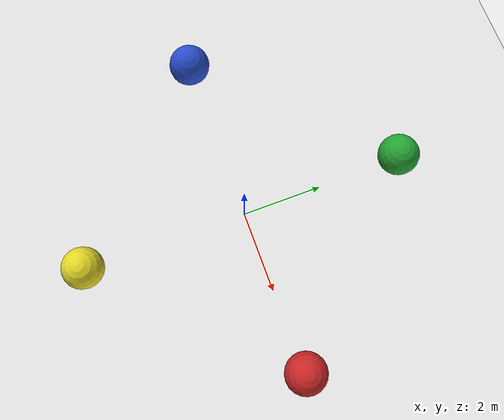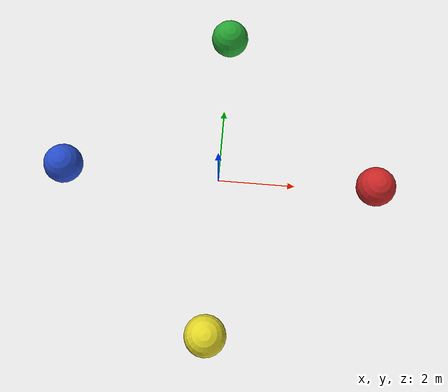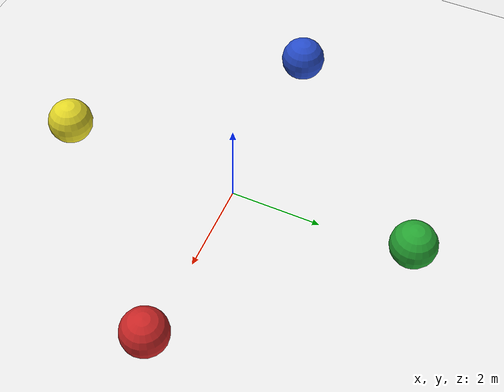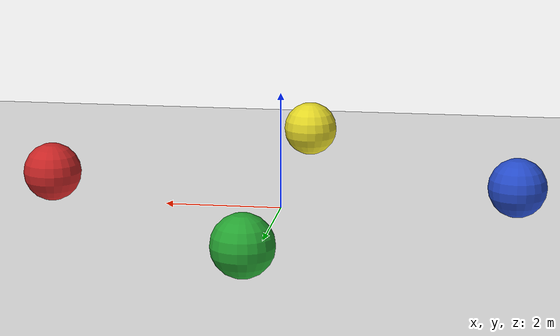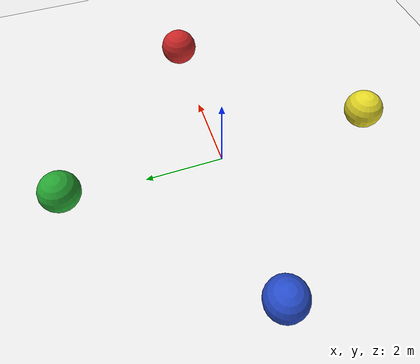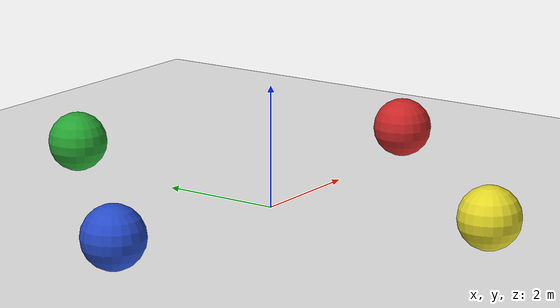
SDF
<sdf version="1.6">
 <world name="hdworld">
  <light name="sun" type="directional">
   <pose>0 0 10 0 -0 0</pose>
   <diffuse>0.8 0.8 0.8 1</diffuse>
   <specular>0.1 0.1 0.1 1</specular>
   <attenuation>
    <range>1000</range>
    <constant>0.9</constant>
    <linear>0.01</linear>
    <quadratic>0.001</quadratic>
   </attenuation>
   <direction>-0.5 0.5 -1</direction>
  </light>
  <model name="ground_plane">
   <static>1</static>
   <link name="link">
    <collision name="collision">
     <geometry><plane><normal>0 0 1</normal><size>100 100</size></plane></geometry>
     <surface><friction><ode><mu>100</mu><mu2>50</mu2></ode></friction></surface>
    </collision>
    <visual name="visual">
     <cast_shadows>0</cast_shadows>
     <geometry><plane><normal>0 0 1</normal><size>100 100</size></plane></geometry>
     <material>
      <script><uri>file://media/materials/scripts/gazebo.material</uri><name>Gazebo/White</name></script>
     </material>
    </visual>
   </link>
  </model>
  <gravity>0 0 -9.8</gravity>
  <magnetic_field>6e-06 2.3e-05 -4.2e-05</magnetic_field>
  <atmosphere type="adiabatic"/>
  <physics name="default_physics" default="0" type="ode">
   <max_step_size>0.001</max_step_size>
   <real_time_factor>1</real_time_factor>
   <real_time_update_rate>1000</real_time_update_rate>
  </physics>
  <scene><ambient>1 1 1 1</ambient><background>1 1 1 1</background><shadows>0</shadows></scene>
  <spherical_coordinates>
   <surface_model>EARTH_WGS84</surface_model>
   <latitude_deg>0</latitude_deg>
   <longitude_deg>0</longitude_deg>
   <elevation>0</elevation>
   <heading_deg>0</heading_deg>
  </spherical_coordinates>
  <model name="unit_sphere_0">
   <pose>0 4 0.5 0 -0 0</pose>
   <link name="link">
    <inertial>
     <mass>1</mass>
     <inertia><ixx>0.1</ixx><ixy>0</ixy><ixz>0</ixz><iyy>0.1</iyy><iyz>0</iyz><izz>0.1</izz></inertia>
    </inertial>
    <collision name="collision"><geometry><sphere><radius>0.5</radius></sphere></geometry></collision>
    <visual name="visual">
     <geometry><sphere><radius>0.5</radius></sphere></geometry>
     <material>
      <script><name>Gazebo/Green</name><uri>file://media/materials/scripts/gazebo.material</uri></script>
     </material>
    </visual>
   </link>
  </model>
  <model name="unit_sphere_1">
   <pose>4 0 0.5 0 -0 0</pose>
   <link name="link">
    <inertial>
     <mass>1</mass>
     <inertia><ixx>0.1</ixx><ixy>0</ixy><ixz>0</ixz><iyy>0.1</iyy><iyz>0</iyz><izz>0.1</izz></inertia>
    </inertial>
    <collision name="collision"><geometry><sphere><radius>0.5</radius></sphere></geometry></collision>
    <visual name="visual">
     <geometry><sphere><radius>0.5</radius></sphere></geometry>
     <material>
      <script><name>Gazebo/Red</name><uri>file://media/materials/scripts/gazebo.material</uri></script>
     </material>
    </visual>
   </link>
  </model>
  <model name="unit_sphere_2">
   <pose>0 -4 0.5 0 -0 0</pose>
   <link name="link">
    <inertial>
     <mass>1</mass>
     <inertia><ixx>0.1</ixx><ixy>0</ixy><ixz>0</ixz><iyy>0.1</iyy><iyz>0</iyz><izz>0.1</izz></inertia>
    </inertial>
    <collision name="collision"><geometry><sphere><radius>0.5</radius></sphere></geometry></collision>
    <visual name="visual">
     <geometry><sphere><radius>0.5</radius></sphere></geometry>
     <material>
      <script><name>Gazebo/Yellow</name><uri>file://media/materials/scripts/gazebo.material</uri></script>
     </material>
    </visual>
   </link>
  </model>
  <model name="unit_sphere_3">
   <pose>-4 0 0.5 0 -0 0</pose>
   <link name="link">
    <inertial>
     <mass>1</mass>
     <inertia><ixx>0.1</ixx><ixy>0</ixy><ixz>0</ixz><iyy>0.1</iyy><iyz>0</iyz><izz>0.1</izz></inertia>
    </inertial>
    <collision name="collision"><geometry><sphere><radius>0.5</radius></sphere></geometry></collision>
    <visual name="visual">
     <geometry><sphere><radius>0.5</radius></sphere></geometry>
     <material>
      <script><name>Gazebo/Blue</name><uri>file://media/materials/scripts/gazebo.material</uri></script>
     </material>
    </visual>
   </link>
  </model>
 </world>
</sdf>
